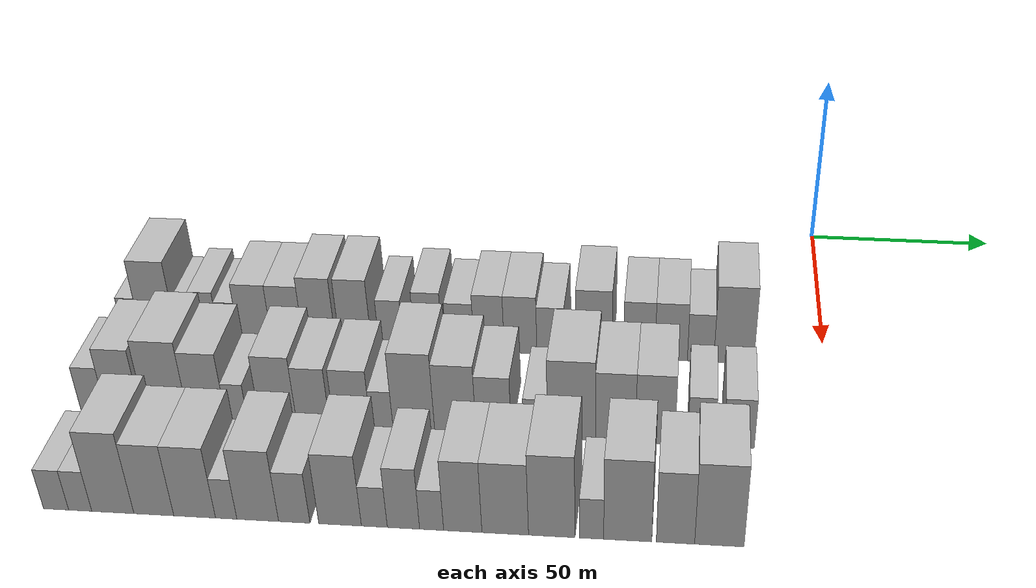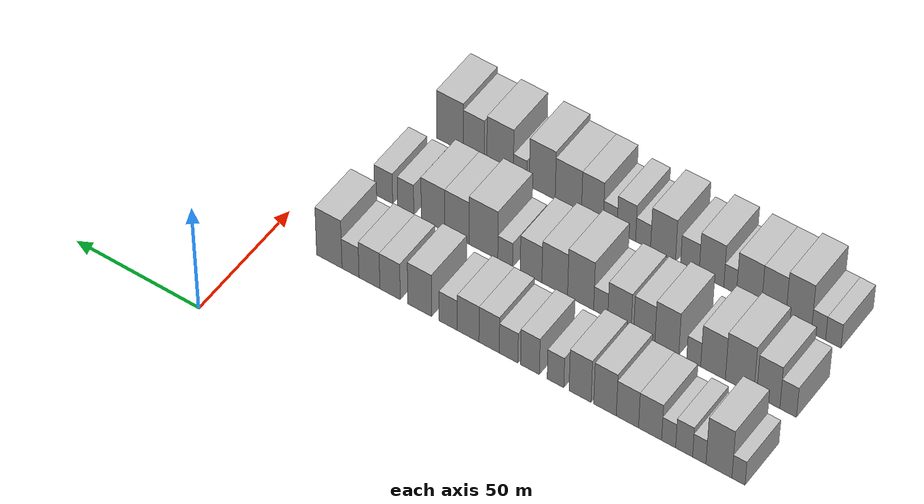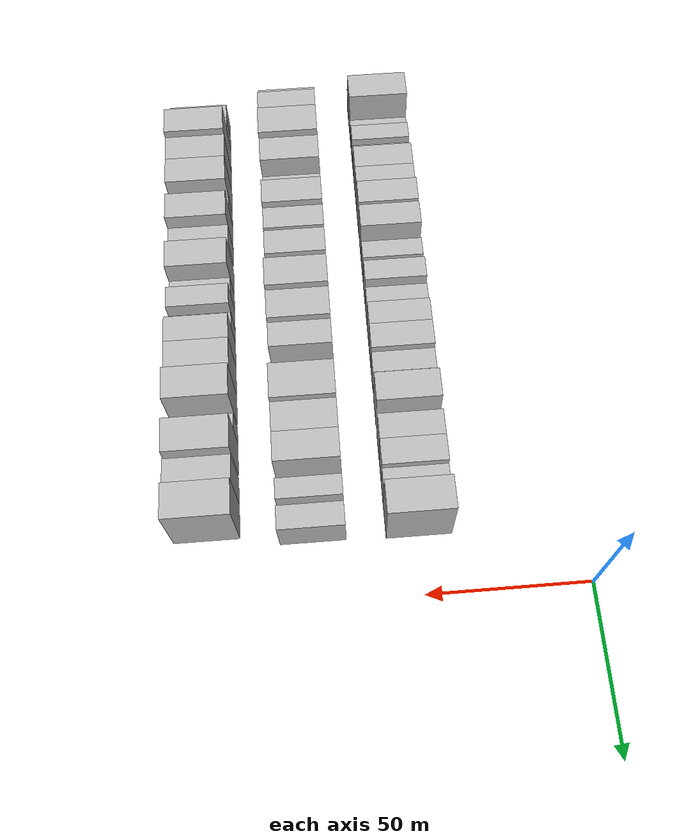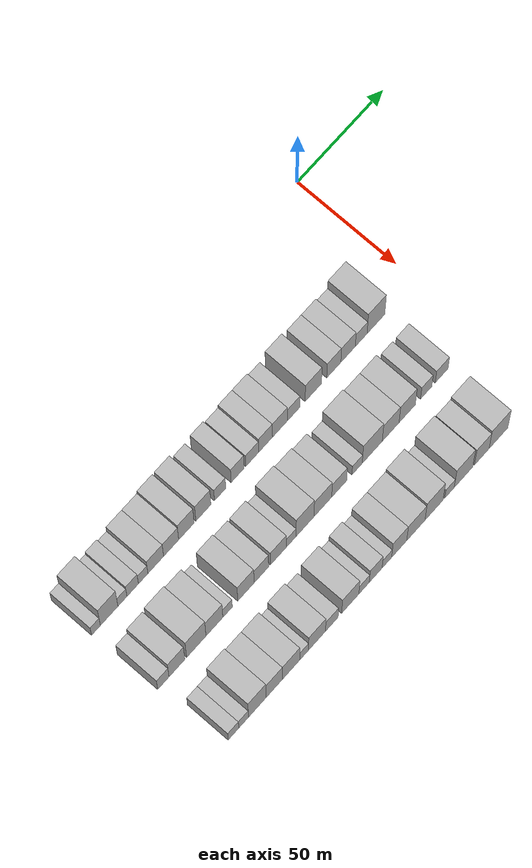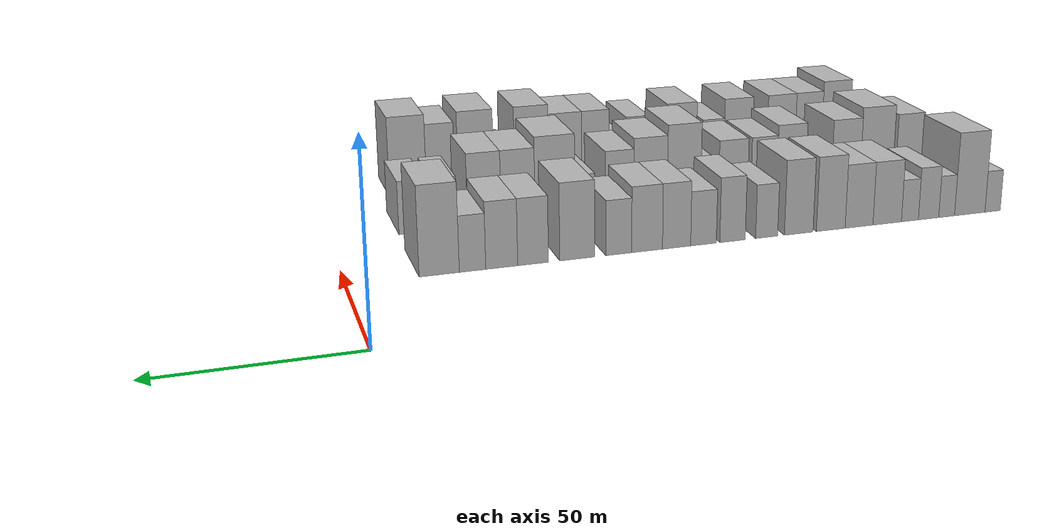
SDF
<sdf version="1.6">
 <world name="default">
  <model name="building_19">
   <static>1</static>
   <pose>50.0000 -181.4019 0 0.000000 0.000000 0.000000</pose>
   <link name="link">
    <pose>0 0 6.00 0 0 0</pose>
    <collision name="collision"><geometry><box><size>20.0000 4.9000 12.0000</size></box></geometry></collision>
    <visual name="visual">
     <cast_shadows>0</cast_shadows>
     <geometry><box><size>20.0000 4.9000 12.0000</size></box></geometry>
     <material>
      <script>
       <uri>model://HANNAS_wall/materials/scripts</uri>
       <uri>model://HANNAS_wall/materials/textures</uri>
       <name>vrc/HANNAS_wall</name>
      </script>
     </material>
    </visual>
   </link>
  </model>
  <model name="building_20">
   <static>1</static>
   <pose>50.0000 -174.1154 0 0.000000 0.000000 0.000000</pose>
   <link name="link">
    <pose>0 0 12.00 0 0 0</pose>
    <collision name="collision"><geometry><box><size>20.0000 9.6731 24.0000</size></box></geometry></collision>
    <visual name="visual">
     <cast_shadows>0</cast_shadows>
     <geometry><box><size>20.0000 9.6731 24.0000</size></box></geometry>
     <material>
      <script>
       <uri>model://HANNAS_wall/materials/scripts</uri>
       <uri>model://HANNAS_wall/materials/textures</uri>
       <name>vrc/HANNAS_wall</name>
      </script>
     </material>
    </visual>
   </link>
  </model>
  <model name="building_21">
   <static>1</static>
   <pose>50.0000 -166.7854 0 0.000000 0.000000 0.000000</pose>
   <link name="link">
    <pose>0 0 6.00 0 0 0</pose>
    <collision name="collision"><geometry><box><size>20.0000 4.9869 12.0000</size></box></geometry></collision>
    <visual name="visual">
     <cast_shadows>0</cast_shadows>
     <geometry><box><size>20.0000 4.9869 12.0000</size></box></geometry>
     <material>
      <script>
       <uri>model://HANNAS_wall/materials/scripts</uri>
       <uri>model://HANNAS_wall/materials/textures</uri>
       <name>vrc/HANNAS_wall</name>
      </script>
     </material>
    </visual>
   </link>
  </model>
  <model name="building_22">
   <static>1</static>
   <pose>50.0000 -161.1091 0 0.000000 0.000000 0.000000</pose>
   <link name="link">
    <pose>0 0 7.50 0 0 0</pose>
    <collision name="collision"><geometry><box><size>20.0000 6.3658 15.0000</size></box></geometry></collision>
    <visual name="visual">
     <cast_shadows>0</cast_shadows>
     <geometry><box><size>20.0000 6.3658 15.0000</size></box></geometry>
     <material>
      <script>
       <uri>model://HANNAS_wall/materials/scripts</uri>
       <uri>model://HANNAS_wall/materials/textures</uri>
       <name>vrc/HANNAS_wall</name>
      </script>
     </material>
    </visual>
   </link>
  </model>
  <model name="building_23">
   <static>1</static>
   <pose>50.0000 -155.2915 0 0.000000 0.000000 0.000000</pose>
   <link name="link">
    <pose>0 0 6.00 0 0 0</pose>
    <collision name="collision"><geometry><box><size>20.0000 5.2694 12.0000</size></box></geometry></collision>
    <visual name="visual">
     <cast_shadows>0</cast_shadows>
     <geometry><box><size>20.0000 5.2694 12.0000</size></box></geometry>
     <material>
      <script>
       <uri>model://HANNAS_wall/materials/scripts</uri>
       <uri>model://HANNAS_wall/materials/textures</uri>
       <name>vrc/HANNAS_wall</name>
      </script>
     </material>
    </visual>
   </link>
  </model>
  <model name="building_24">
   <static>1</static>
   <pose>50.0000 -148.2918 0 0.000000 0.000000 0.000000</pose>
   <link name="link">
    <pose>0 0 9.00 0 0 0</pose>
    <collision name="collision"><geometry><box><size>20.0000 8.7299 18.0000</size></box></geometry></collision>
    <visual name="visual">
     <cast_shadows>0</cast_shadows>
     <geometry><box><size>20.0000 8.7299 18.0000</size></box></geometry>
     <material>
      <script>
       <uri>model://HANNAS_wall/materials/scripts</uri>
       <uri>model://HANNAS_wall/materials/textures</uri>
       <name>vrc/HANNAS_wall</name>
      </script>
     </material>
    </visual>
   </link>
  </model>
  <model name="building_25">
   <static>1</static>
   <pose>50.0000 -139.7136 0 0.000000 0.000000 0.000000</pose>
   <link name="link">
    <pose>0 0 9.00 0 0 0</pose>
    <collision name="collision"><geometry><box><size>20.0000 8.4266 18.0000</size></box></geometry></collision>
    <visual name="visual">
     <cast_shadows>0</cast_shadows>
     <geometry><box><size>20.0000 8.4266 18.0000</size></box></geometry>
     <material>
      <script>
       <uri>model://HANNAS_wall/materials/scripts</uri>
       <uri>model://HANNAS_wall/materials/textures</uri>
       <name>vrc/HANNAS_wall</name>
      </script>
     </material>
    </visual>
   </link>
  </model>
  <model name="building_26">
   <static>1</static>
   <pose>50.0000 -131.1972 0 0.000000 0.000000 0.000000</pose>
   <link name="link">
    <pose>0 0 10.50 0 0 0</pose>
    <collision name="collision"><geometry><box><size>20.0000 8.6061 21.0000</size></box></geometry></collision>
    <visual name="visual">
     <cast_shadows>0</cast_shadows>
     <geometry><box><size>20.0000 8.6061 21.0000</size></box></geometry>
     <material>
      <script>
       <uri>model://HANNAS_wall/materials/scripts</uri>
       <uri>model://HANNAS_wall/materials/textures</uri>
       <name>vrc/HANNAS_wall</name>
      </script>
     </material>
    </visual>
   </link>
  </model>
  <model name="building_27">
   <static>1</static>
   <pose>50.0000 -121.6702 0 0.000000 0.000000 0.000000</pose>
   <link name="link">
    <pose>0 0 10.50 0 0 0</pose>
    <collision name="collision"><geometry><box><size>20.0000 8.4480 21.0000</size></box></geometry></collision>
    <visual name="visual">
     <cast_shadows>0</cast_shadows>
     <geometry><box><size>20.0000 8.4480 21.0000</size></box></geometry>
     <material>
      <script>
       <uri>model://HANNAS_wall/materials/scripts</uri>
       <uri>model://HANNAS_wall/materials/textures</uri>
       <name>vrc/HANNAS_wall</name>
      </script>
     </material>
    </visual>
   </link>
  </model>
  <model name="building_28">
   <static>1</static>
   <pose>50.0000 -112.2499 0 0.000000 0.000000 0.000000</pose>
   <link name="link">
    <pose>0 0 7.50 0 0 0</pose>
    <collision name="collision"><geometry><box><size>20.0000 6.3926 15.0000</size></box></geometry></collision>
    <visual name="visual">
     <cast_shadows>0</cast_shadows>
     <geometry><box><size>20.0000 6.3926 15.0000</size></box></geometry>
     <material>
      <script>
       <uri>model://HANNAS_wall/materials/scripts</uri>
       <uri>model://HANNAS_wall/materials/textures</uri>
       <name>vrc/HANNAS_wall</name>
      </script>
     </material>
    </visual>
   </link>
  </model>
  <model name="building_29">
   <static>1</static>
   <pose>50.0000 -102.4065 0 0.000000 0.000000 0.000000</pose>
   <link name="link">
    <pose>0 0 9.00 0 0 0</pose>
    <collision name="collision"><geometry><box><size>20.0000 7.2943 18.0000</size></box></geometry></collision>
    <visual name="visual">
     <cast_shadows>0</cast_shadows>
     <geometry><box><size>20.0000 7.2943 18.0000</size></box></geometry>
     <material>
      <script>
       <uri>model://HANNAS_wall/materials/scripts</uri>
       <uri>model://HANNAS_wall/materials/textures</uri>
       <name>vrc/HANNAS_wall</name>
      </script>
     </material>
    </visual>
   </link>
  </model>
  <model name="building_30">
   <static>1</static>
   <pose>50.0000 -94.1300 0 0.000000 0.000000 0.000000</pose>
   <link name="link">
    <pose>0 0 7.50 0 0 0</pose>
    <collision name="collision"><geometry><box><size>20.0000 7.2586 15.0000</size></box></geometry></collision>
    <visual name="visual">
     <cast_shadows>0</cast_shadows>
     <geometry><box><size>20.0000 7.2586 15.0000</size></box></geometry>
     <material>
      <script>
       <uri>model://HANNAS_wall/materials/scripts</uri>
       <uri>model://HANNAS_wall/materials/textures</uri>
       <name>vrc/HANNAS_wall</name>
      </script>
     </material>
    </visual>
   </link>
  </model>
  <model name="building_31">
   <static>1</static>
   <pose>50.0000 -86.5583 0 0.000000 0.000000 0.000000</pose>
   <link name="link">
    <pose>0 0 9.00 0 0 0</pose>
    <collision name="collision"><geometry><box><size>20.0000 7.8849 18.0000</size></box></geometry></collision>
    <visual name="visual">
     <cast_shadows>0</cast_shadows>
     <geometry><box><size>20.0000 7.8849 18.0000</size></box></geometry>
     <material>
      <script>
       <uri>model://HANNAS_wall/materials/scripts</uri>
       <uri>model://HANNAS_wall/materials/textures</uri>
       <name>vrc/HANNAS_wall</name>
      </script>
     </material>
    </visual>
   </link>
  </model>
  <model name="building_32">
   <static>1</static>
   <pose>50.0000 -78.3560 0 0.000000 0.000000 0.000000</pose>
   <link name="link">
    <pose>0 0 9.00 0 0 0</pose>
    <collision name="collision"><geometry><box><size>20.0000 8.5198 18.0000</size></box></geometry></collision>
    <visual name="visual">
     <cast_shadows>0</cast_shadows>
     <geometry><box><size>20.0000 8.5198 18.0000</size></box></geometry>
     <material>
      <script>
       <uri>model://HANNAS_wall/materials/scripts</uri>
       <uri>model://HANNAS_wall/materials/textures</uri>
       <name>vrc/HANNAS_wall</name>
      </script>
     </material>
    </visual>
   </link>
  </model>
  <model name="building_33">
   <static>1</static>
   <pose>50.0000 -70.5509 0 0.000000 0.000000 0.000000</pose>
   <link name="link">
    <pose>0 0 7.50 0 0 0</pose>
    <collision name="collision"><geometry><box><size>20.0000 7.0905 15.0000</size></box></geometry></collision>
    <visual name="visual">
     <cast_shadows>0</cast_shadows>
     <geometry><box><size>20.0000 7.0905 15.0000</size></box></geometry>
     <material>
      <script>
       <uri>model://HANNAS_wall/materials/scripts</uri>
       <uri>model://HANNAS_wall/materials/textures</uri>
       <name>vrc/HANNAS_wall</name>
      </script>
     </material>
    </visual>
   </link>
  </model>
  <model name="building_34">
   <static>1</static>
   <pose>50.0000 -59.3128 0 0.000000 0.000000 0.000000</pose>
   <link name="link">
    <pose>0 0 10.50 0 0 0</pose>
    <collision name="collision"><geometry><box><size>20.0000 9.3856 21.0000</size></box></geometry></collision>
    <visual name="visual">
     <cast_shadows>0</cast_shadows>
     <geometry><box><size>20.0000 9.3856 21.0000</size></box></geometry>
     <material>
      <script>
       <uri>model://HANNAS_wall/materials/scripts</uri>
       <uri>model://HANNAS_wall/materials/textures</uri>
       <name>vrc/HANNAS_wall</name>
      </script>
     </material>
    </visual>
   </link>
  </model>
  <model name="building_35">
   <static>1</static>
   <pose>50.0000 -47.5667 0 0.000000 0.000000 0.000000</pose>
   <link name="link">
    <pose>0 0 9.00 0 0 0</pose>
    <collision name="collision"><geometry><box><size>20.0000 8.1066 18.0000</size></box></geometry></collision>
    <visual name="visual">
     <cast_shadows>0</cast_shadows>
     <geometry><box><size>20.0000 8.1066 18.0000</size></box></geometry>
     <material>
      <script>
       <uri>model://HANNAS_wall/materials/scripts</uri>
       <uri>model://HANNAS_wall/materials/textures</uri>
       <name>vrc/HANNAS_wall</name>
      </script>
     </material>
    </visual>
   </link>
  </model>
  <model name="building_36">
   <static>1</static>
   <pose>50.0000 -39.3551 0 0.000000 0.000000 0.000000</pose>
   <link name="link">
    <pose>0 0 9.00 0 0 0</pose>
    <collision name="collision"><geometry><box><size>20.0000 8.3166 18.0000</size></box></geometry></collision>
    <visual name="visual">
     <cast_shadows>0</cast_shadows>
     <geometry><box><size>20.0000 8.3166 18.0000</size></box></geometry>
     <material>
      <script>
       <uri>model://HANNAS_wall/materials/scripts</uri>
       <uri>model://HANNAS_wall/materials/textures</uri>
       <name>vrc/HANNAS_wall</name>
      </script>
     </material>
    </visual>
   </link>
  </model>
  <model name="building_37">
   <static>1</static>
   <pose>50.0000 -31.7991 0 0.000000 0.000000 0.000000</pose>
   <link name="link">
    <pose>0 0 7.50 0 0 0</pose>
    <collision name="collision"><geometry><box><size>20.0000 6.7954 15.0000</size></box></geometry></collision>
    <visual name="visual">
     <cast_shadows>0</cast_shadows>
     <geometry><box><size>20.0000 6.7954 15.0000</size></box></geometry>
     <material>
      <script>
       <uri>model://HANNAS_wall/materials/scripts</uri>
       <uri>model://HANNAS_wall/materials/textures</uri>
       <name>vrc/HANNAS_wall</name>
      </script>
     </material>
    </visual>
   </link>
  </model>
  <model name="building_38">
   <static>1</static>
   <pose>50.0000 -23.2896 0 0.000000 0.000000 0.000000</pose>
   <link name="link">
    <pose>0 0 12.00 0 0 0</pose>
    <collision name="collision"><geometry><box><size>20.0000 10.2236 24.0000</size></box></geometry></collision>
    <visual name="visual">
     <cast_shadows>0</cast_shadows>
     <geometry><box><size>20.0000 10.2236 24.0000</size></box></geometry>
     <material>
      <script>
       <uri>model://HANNAS_wall/materials/scripts</uri>
       <uri>model://HANNAS_wall/materials/textures</uri>
       <name>vrc/HANNAS_wall</name>
      </script>
     </material>
    </visual>
   </link>
  </model>
  <model name="building_102">
   <static>1</static>
   <pose>82.0000 -179.8243 0 0.000000 0.000000 0.000000</pose>
   <link name="link">
    <pose>0 0 7.50 0 0 0</pose>
    <collision name="collision"><geometry><box><size>20.0000 6.2263 15.0000</size></box></geometry></collision>
    <visual name="visual">
     <cast_shadows>0</cast_shadows>
     <geometry><box><size>20.0000 6.2263 15.0000</size></box></geometry>
     <material>
      <script>
       <uri>model://HANNAS_wall/materials/scripts</uri>
       <uri>model://HANNAS_wall/materials/textures</uri>
       <name>vrc/HANNAS_wall</name>
      </script>
     </material>
    </visual>
   </link>
  </model>
  <model name="building_103">
   <static>1</static>
   <pose>82.0000 -172.3309 0 0.000000 0.000000 0.000000</pose>
   <link name="link">
    <pose>0 0 10.50 0 0 0</pose>
    <collision name="collision"><geometry><box><size>20.0000 8.7605 21.0000</size></box></geometry></collision>
    <visual name="visual">
     <cast_shadows>0</cast_shadows>
     <geometry><box><size>20.0000 8.7605 21.0000</size></box></geometry>
     <material>
      <script>
       <uri>model://HANNAS_wall/materials/scripts</uri>
       <uri>model://HANNAS_wall/materials/textures</uri>
       <name>vrc/HANNAS_wall</name>
      </script>
     </material>
    </visual>
   </link>
  </model>
  <model name="building_104">
   <static>1</static>
   <pose>82.0000 -161.5767 0 0.000000 0.000000 0.000000</pose>
   <link name="link">
    <pose>0 0 12.00 0 0 0</pose>
    <collision name="collision"><geometry><box><size>20.0000 10.7479 24.0000</size></box></geometry></collision>
    <visual name="visual">
     <cast_shadows>0</cast_shadows>
     <geometry><box><size>20.0000 10.7479 24.0000</size></box></geometry>
     <material>
      <script>
       <uri>model://HANNAS_wall/materials/scripts</uri>
       <uri>model://HANNAS_wall/materials/textures</uri>
       <name>vrc/HANNAS_wall</name>
      </script>
     </material>
    </visual>
   </link>
  </model>
  <model name="building_105">
   <static>1</static>
   <pose>82.0000 -151.5156 0 0.000000 0.000000 0.000000</pose>
   <link name="link">
    <pose>0 0 10.50 0 0 0</pose>
    <collision name="collision"><geometry><box><size>20.0000 9.3743 21.0000</size></box></geometry></collision>
    <visual name="visual">
     <cast_shadows>0</cast_shadows>
     <geometry><box><size>20.0000 9.3743 21.0000</size></box></geometry>
     <material>
      <script>
       <uri>model://HANNAS_wall/materials/scripts</uri>
       <uri>model://HANNAS_wall/materials/textures</uri>
       <name>vrc/HANNAS_wall</name>
      </script>
     </material>
    </visual>
   </link>
  </model>
  <model name="building_106">
   <static>1</static>
   <pose>82.0000 -144.1608 0 0.000000 0.000000 0.000000</pose>
   <link name="link">
    <pose>0 0 6.00 0 0 0</pose>
    <collision name="collision"><geometry><box><size>20.0000 5.3353 12.0000</size></box></geometry></collision>
    <visual name="visual">
     <cast_shadows>0</cast_shadows>
     <geometry><box><size>20.0000 5.3353 12.0000</size></box></geometry>
     <material>
      <script>
       <uri>model://HANNAS_wall/materials/scripts</uri>
       <uri>model://HANNAS_wall/materials/textures</uri>
       <name>vrc/HANNAS_wall</name>
      </script>
     </material>
    </visual>
   </link>
  </model>
  <model name="building_107">
   <static>1</static>
   <pose>82.0000 -133.9199 0 0.000000 0.000000 0.000000</pose>
   <link name="link">
    <pose>0 0 10.50 0 0 0</pose>
    <collision name="collision"><geometry><box><size>20.0000 9.1466 21.0000</size></box></geometry></collision>
    <visual name="visual">
     <cast_shadows>0</cast_shadows>
     <geometry><box><size>20.0000 9.1466 21.0000</size></box></geometry>
     <material>
      <script>
       <uri>model://HANNAS_wall/materials/scripts</uri>
       <uri>model://HANNAS_wall/materials/textures</uri>
       <name>vrc/HANNAS_wall</name>
      </script>
     </material>
    </visual>
   </link>
  </model>
  <model name="building_108">
   <static>1</static>
   <pose>82.0000 -125.2699 0 0.000000 0.000000 0.000000</pose>
   <link name="link">
    <pose>0 0 9.00 0 0 0</pose>
    <collision name="collision"><geometry><box><size>20.0000 8.1534 18.0000</size></box></geometry></collision>
    <visual name="visual">
     <cast_shadows>0</cast_shadows>
     <geometry><box><size>20.0000 8.1534 18.0000</size></box></geometry>
     <material>
      <script>
       <uri>model://HANNAS_wall/materials/scripts</uri>
       <uri>model://HANNAS_wall/materials/textures</uri>
       <name>vrc/HANNAS_wall</name>
      </script>
     </material>
    </visual>
   </link>
  </model>
  <model name="building_109">
   <static>1</static>
   <pose>82.0000 -115.6940 0 0.000000 0.000000 0.000000</pose>
   <link name="link">
    <pose>0 0 9.00 0 0 0</pose>
    <collision name="collision"><geometry><box><size>20.0000 8.9985 18.0000</size></box></geometry></collision>
    <visual name="visual">
     <cast_shadows>0</cast_shadows>
     <geometry><box><size>20.0000 8.9985 18.0000</size></box></geometry>
     <material>
      <script>
       <uri>model://HANNAS_wall/materials/scripts</uri>
       <uri>model://HANNAS_wall/materials/textures</uri>
       <name>vrc/HANNAS_wall</name>
      </script>
     </material>
    </visual>
   </link>
  </model>
  <model name="building_110">
   <static>1</static>
   <pose>82.0000 -108.4485 0 0.000000 0.000000 0.000000</pose>
   <link name="link">
    <pose>0 0 6.00 0 0 0</pose>
    <collision name="collision"><geometry><box><size>20.0000 5.4926 12.0000</size></box></geometry></collision>
    <visual name="visual">
     <cast_shadows>0</cast_shadows>
     <geometry><box><size>20.0000 5.4926 12.0000</size></box></geometry>
     <material>
      <script>
       <uri>model://HANNAS_wall/materials/scripts</uri>
       <uri>model://HANNAS_wall/materials/textures</uri>
       <name>vrc/HANNAS_wall</name>
      </script>
     </material>
    </visual>
   </link>
  </model>
  <model name="building_111">
   <static>1</static>
   <pose>82.0000 -100.6240 0 0.000000 0.000000 0.000000</pose>
   <link name="link">
    <pose>0 0 12.00 0 0 0</pose>
    <collision name="collision"><geometry><box><size>20.0000 10.1564 24.0000</size></box></geometry></collision>
    <visual name="visual">
     <cast_shadows>0</cast_shadows>
     <geometry><box><size>20.0000 10.1564 24.0000</size></box></geometry>
     <material>
      <script>
       <uri>model://HANNAS_wall/materials/scripts</uri>
       <uri>model://HANNAS_wall/materials/textures</uri>
       <name>vrc/HANNAS_wall</name>
      </script>
     </material>
    </visual>
   </link>
  </model>
  <model name="building_112">
   <static>1</static>
   <pose>82.0000 -90.5231 0 0.000000 0.000000 0.000000</pose>
   <link name="link">
    <pose>0 0 10.50 0 0 0</pose>
    <collision name="collision"><geometry><box><size>20.0000 10.0453 21.0000</size></box></geometry></collision>
    <visual name="visual">
     <cast_shadows>0</cast_shadows>
     <geometry><box><size>20.0000 10.0453 21.0000</size></box></geometry>
     <material>
      <script>
       <uri>model://HANNAS_wall/materials/scripts</uri>
       <uri>model://HANNAS_wall/materials/textures</uri>
       <name>vrc/HANNAS_wall</name>
      </script>
     </material>
    </visual>
   </link>
  </model>
  <model name="building_113">
   <static>1</static>
   <pose>82.0000 -81.2311 0 0.000000 0.000000 0.000000</pose>
   <link name="link">
    <pose>0 0 9.00 0 0 0</pose>
    <collision name="collision"><geometry><box><size>20.0000 8.5388 18.0000</size></box></geometry></collision>
    <visual name="visual">
     <cast_shadows>0</cast_shadows>
     <geometry><box><size>20.0000 8.5388 18.0000</size></box></geometry>
     <material>
      <script>
       <uri>model://HANNAS_wall/materials/scripts</uri>
       <uri>model://HANNAS_wall/materials/textures</uri>
       <name>vrc/HANNAS_wall</name>
      </script>
     </material>
    </visual>
   </link>
  </model>
  <model name="building_114">
   <static>1</static>
   <pose>82.0000 -71.0365 0 0.000000 0.000000 0.000000</pose>
   <link name="link">
    <pose>0 0 6.00 0 0 0</pose>
    <collision name="collision"><geometry><box><size>20.0000 5.8503 12.0000</size></box></geometry></collision>
    <visual name="visual">
     <cast_shadows>0</cast_shadows>
     <geometry><box><size>20.0000 5.8503 12.0000</size></box></geometry>
     <material>
      <script>
       <uri>model://HANNAS_wall/materials/scripts</uri>
       <uri>model://HANNAS_wall/materials/textures</uri>
       <name>vrc/HANNAS_wall</name>
      </script>
     </material>
    </visual>
   </link>
  </model>
  <model name="building_115">
   <static>1</static>
   <pose>82.0000 -62.3715 0 0.000000 0.000000 0.000000</pose>
   <link name="link">
    <pose>0 0 12.00 0 0 0</pose>
    <collision name="collision"><geometry><box><size>20.0000 11.4798 24.0000</size></box></geometry></collision>
    <visual name="visual">
     <cast_shadows>0</cast_shadows>
     <geometry><box><size>20.0000 11.4798 24.0000</size></box></geometry>
     <material>
      <script>
       <uri>model://HANNAS_wall/materials/scripts</uri>
       <uri>model://HANNAS_wall/materials/textures</uri>
       <name>vrc/HANNAS_wall</name>
      </script>
     </material>
    </visual>
   </link>
  </model>
  <model name="building_116">
   <static>1</static>
   <pose>82.0000 -51.8162 0 0.000000 0.000000 0.000000</pose>
   <link name="link">
    <pose>0 0 10.50 0 0 0</pose>
    <collision name="collision"><geometry><box><size>20.0000 9.6308 21.0000</size></box></geometry></collision>
    <visual name="visual">
     <cast_shadows>0</cast_shadows>
     <geometry><box><size>20.0000 9.6308 21.0000</size></box></geometry>
     <material>
      <script>
       <uri>model://HANNAS_wall/materials/scripts</uri>
       <uri>model://HANNAS_wall/materials/textures</uri>
       <name>vrc/HANNAS_wall</name>
      </script>
     </material>
    </visual>
   </link>
  </model>
  <model name="building_117">
   <static>1</static>
   <pose>82.0000 -42.3027 0 0.000000 0.000000 0.000000</pose>
   <link name="link">
    <pose>0 0 10.50 0 0 0</pose>
    <collision name="collision"><geometry><box><size>20.0000 9.3961 21.0000</size></box></geometry></collision>
    <visual name="visual">
     <cast_shadows>0</cast_shadows>
     <geometry><box><size>20.0000 9.3961 21.0000</size></box></geometry>
     <material>
      <script>
       <uri>model://HANNAS_wall/materials/scripts</uri>
       <uri>model://HANNAS_wall/materials/textures</uri>
       <name>vrc/HANNAS_wall</name>
      </script>
     </material>
    </visual>
   </link>
  </model>
  <model name="building_118">
   <static>1</static>
   <pose>82.0000 -31.3505 0 0.000000 0.000000 0.000000</pose>
   <link name="link">
    <pose>0 0 7.50 0 0 0</pose>
    <collision name="collision"><geometry><box><size>20.0000 6.5084 15.0000</size></box></geometry></collision>
    <visual name="visual">
     <cast_shadows>0</cast_shadows>
     <geometry><box><size>20.0000 6.5084 15.0000</size></box></geometry>
     <material>
      <script>
       <uri>model://HANNAS_wall/materials/scripts</uri>
       <uri>model://HANNAS_wall/materials/textures</uri>
       <name>vrc/HANNAS_wall</name>
      </script>
     </material>
    </visual>
   </link>
  </model>
  <model name="building_119">
   <static>1</static>
   <pose>82.0000 -22.4010 0 0.000000 0.000000 0.000000</pose>
   <link name="link">
    <pose>0 0 7.50 0 0 0</pose>
    <collision name="collision"><geometry><box><size>20.0000 7.3905 15.0000</size></box></geometry></collision>
    <visual name="visual">
     <cast_shadows>0</cast_shadows>
     <geometry><box><size>20.0000 7.3905 15.0000</size></box></geometry>
     <material>
      <script>
       <uri>model://HANNAS_wall/materials/scripts</uri>
       <uri>model://HANNAS_wall/materials/textures</uri>
       <name>vrc/HANNAS_wall</name>
      </script>
     </material>
    </visual>
   </link>
  </model>
  <model name="building_177">
   <static>1</static>
   <pose>114.0000 -177.0372 0 0.000000 0.000000 0.000000</pose>
   <link name="link">
    <pose>0 0 6.00 0 0 0</pose>
    <collision name="collision"><geometry><box><size>20.0000 5.8361 12.0000</size></box></geometry></collision>
    <visual name="visual">
     <cast_shadows>0</cast_shadows>
     <geometry><box><size>20.0000 5.8361 12.0000</size></box></geometry>
     <material>
      <script>
       <uri>model://HANNAS_wall/materials/scripts</uri>
       <uri>model://HANNAS_wall/materials/textures</uri>
       <name>vrc/HANNAS_wall</name>
      </script>
     </material>
    </visual>
   </link>
  </model>
  <model name="building_178">
   <static>1</static>
   <pose>114.0000 -171.4292 0 0.000000 0.000000 0.000000</pose>
   <link name="link">
    <pose>0 0 6.00 0 0 0</pose>
    <collision name="collision"><geometry><box><size>20.0000 5.3800 12.0000</size></box></geometry></collision>
    <visual name="visual">
     <cast_shadows>0</cast_shadows>
     <geometry><box><size>20.0000 5.3800 12.0000</size></box></geometry>
     <material>
      <script>
       <uri>model://HANNAS_wall/materials/scripts</uri>
       <uri>model://HANNAS_wall/materials/textures</uri>
       <name>vrc/HANNAS_wall</name>
      </script>
     </material>
    </visual>
   </link>
  </model>
  <model name="building_179">
   <static>1</static>
   <pose>114.0000 -163.8633 0 0.000000 0.000000 0.000000</pose>
   <link name="link">
    <pose>0 0 12.00 0 0 0</pose>
    <collision name="collision"><geometry><box><size>20.0000 9.7517 24.0000</size></box></geometry></collision>
    <visual name="visual">
     <cast_shadows>0</cast_shadows>
     <geometry><box><size>20.0000 9.7517 24.0000</size></box></geometry>
     <material>
      <script>
       <uri>model://HANNAS_wall/materials/scripts</uri>
       <uri>model://HANNAS_wall/materials/textures</uri>
       <name>vrc/HANNAS_wall</name>
      </script>
     </material>
    </visual>
   </link>
  </model>
  <model name="building_180">
   <static>1</static>
   <pose>114.0000 -154.3883 0 0.000000 0.000000 0.000000</pose>
   <link name="link">
    <pose>0 0 10.50 0 0 0</pose>
    <collision name="collision"><geometry><box><size>20.0000 9.1984 21.0000</size></box></geometry></collision>
    <visual name="visual">
     <cast_shadows>0</cast_shadows>
     <geometry><box><size>20.0000 9.1984 21.0000</size></box></geometry>
     <material>
      <script>
       <uri>model://HANNAS_wall/materials/scripts</uri>
       <uri>model://HANNAS_wall/materials/textures</uri>
       <name>vrc/HANNAS_wall</name>
      </script>
     </material>
    </visual>
   </link>
  </model>
  <model name="building_181">
   <static>1</static>
   <pose>114.0000 -144.9883 0 0.000000 0.000000 0.000000</pose>
   <link name="link">
    <pose>0 0 10.50 0 0 0</pose>
    <collision name="collision"><geometry><box><size>20.0000 9.6016 21.0000</size></box></geometry></collision>
    <visual name="visual">
     <cast_shadows>0</cast_shadows>
     <geometry><box><size>20.0000 9.6016 21.0000</size></box></geometry>
     <material>
      <script>
       <uri>model://HANNAS_wall/materials/scripts</uri>
       <uri>model://HANNAS_wall/materials/textures</uri>
       <name>vrc/HANNAS_wall</name>
      </script>
     </material>
    </visual>
   </link>
  </model>
  <model name="building_182">
   <static>1</static>
   <pose>114.0000 -137.7376 0 0.000000 0.000000 0.000000</pose>
   <link name="link">
    <pose>0 0 6.00 0 0 0</pose>
    <collision name="collision"><geometry><box><size>20.0000 4.8999 12.0000</size></box></geometry></collision>
    <visual name="visual">
     <cast_shadows>0</cast_shadows>
     <geometry><box><size>20.0000 4.8999 12.0000</size></box></geometry>
     <material>
      <script>
       <uri>model://HANNAS_wall/materials/scripts</uri>
       <uri>model://HANNAS_wall/materials/textures</uri>
       <name>vrc/HANNAS_wall</name>
      </script>
     </material>
    </visual>
   </link>
  </model>
  <model name="building_183">
   <static>1</static>
   <pose>114.0000 -130.5097 0 0.000000 0.000000 0.000000</pose>
   <link name="link">
    <pose>0 0 10.50 0 0 0</pose>
    <collision name="collision"><geometry><box><size>20.0000 9.5559 21.0000</size></box></geometry></collision>
    <visual name="visual">
     <cast_shadows>0</cast_shadows>
     <geometry><box><size>20.0000 9.5559 21.0000</size></box></geometry>
     <material>
      <script>
       <uri>model://HANNAS_wall/materials/scripts</uri>
       <uri>model://HANNAS_wall/materials/textures</uri>
       <name>vrc/HANNAS_wall</name>
      </script>
     </material>
    </visual>
   </link>
  </model>
  <model name="building_184">
   <static>1</static>
   <pose>114.0000 -122.1560 0 0.000000 0.000000 0.000000</pose>
   <link name="link">
    <pose>0 0 7.50 0 0 0</pose>
    <collision name="collision"><geometry><box><size>20.0000 7.1515 15.0000</size></box></geometry></collision>
    <visual name="visual">
     <cast_shadows>0</cast_shadows>
     <geometry><box><size>20.0000 7.1515 15.0000</size></box></geometry>
     <material>
      <script>
       <uri>model://HANNAS_wall/materials/scripts</uri>
       <uri>model://HANNAS_wall/materials/textures</uri>
       <name>vrc/HANNAS_wall</name>
      </script>
     </material>
    </visual>
   </link>
  </model>
  <model name="building_185">
   <static>1</static>
   <pose>114.0000 -111.7351 0 0.000000 0.000000 0.000000</pose>
   <link name="link">
    <pose>0 0 10.50 0 0 0</pose>
    <collision name="collision"><geometry><box><size>20.0000 9.6902 21.0000</size></box></geometry></collision>
    <visual name="visual">
     <cast_shadows>0</cast_shadows>
     <geometry><box><size>20.0000 9.6902 21.0000</size></box></geometry>
     <material>
      <script>
       <uri>model://HANNAS_wall/materials/scripts</uri>
       <uri>model://HANNAS_wall/materials/textures</uri>
       <name>vrc/HANNAS_wall</name>
      </script>
     </material>
    </visual>
   </link>
  </model>
  <model name="building_186">
   <static>1</static>
   <pose>114.0000 -103.9580 0 0.000000 0.000000 0.000000</pose>
   <link name="link">
    <pose>0 0 6.00 0 0 0</pose>
    <collision name="collision"><geometry><box><size>20.0000 5.8641 12.0000</size></box></geometry></collision>
    <visual name="visual">
     <cast_shadows>0</cast_shadows>
     <geometry><box><size>20.0000 5.8641 12.0000</size></box></geometry>
     <material>
      <script>
       <uri>model://HANNAS_wall/materials/scripts</uri>
       <uri>model://HANNAS_wall/materials/textures</uri>
       <name>vrc/HANNAS_wall</name>
      </script>
     </material>
    </visual>
   </link>
  </model>
  <model name="building_187">
   <static>1</static>
   <pose>114.0000 -97.3766 0 0.000000 0.000000 0.000000</pose>
   <link name="link">
    <pose>0 0 9.00 0 0 0</pose>
    <collision name="collision"><geometry><box><size>20.0000 7.2988 18.0000</size></box></geometry></collision>
    <visual name="visual">
     <cast_shadows>0</cast_shadows>
     <geometry><box><size>20.0000 7.2988 18.0000</size></box></geometry>
     <material>
      <script>
       <uri>model://HANNAS_wall/materials/scripts</uri>
       <uri>model://HANNAS_wall/materials/textures</uri>
       <name>vrc/HANNAS_wall</name>
      </script>
     </material>
    </visual>
   </link>
  </model>
  <model name="building_188">
   <static>1</static>
   <pose>114.0000 -91.0255 0 0.000000 0.000000 0.000000</pose>
   <link name="link">
    <pose>0 0 6.00 0 0 0</pose>
    <collision name="collision"><geometry><box><size>20.0000 5.4034 12.0000</size></box></geometry></collision>
    <visual name="visual">
     <cast_shadows>0</cast_shadows>
     <geometry><box><size>20.0000 5.4034 12.0000</size></box></geometry>
     <material>
      <script>
       <uri>model://HANNAS_wall/materials/scripts</uri>
       <uri>model://HANNAS_wall/materials/textures</uri>
       <name>vrc/HANNAS_wall</name>
      </script>
     </material>
    </visual>
   </link>
  </model>
  <model name="building_189">
   <static>1</static>
   <pose>114.0000 -84.0196 0 0.000000 0.000000 0.000000</pose>
   <link name="link">
    <pose>0 0 10.50 0 0 0</pose>
    <collision name="collision"><geometry><box><size>20.0000 8.6083 21.0000</size></box></geometry></collision>
    <visual name="visual">
     <cast_shadows>0</cast_shadows>
     <geometry><box><size>20.0000 8.6083 21.0000</size></box></geometry>
     <material>
      <script>
       <uri>model://HANNAS_wall/materials/scripts</uri>
       <uri>model://HANNAS_wall/materials/textures</uri>
       <name>vrc/HANNAS_wall</name>
      </script>
     </material>
    </visual>
   </link>
  </model>
  <model name="building_190">
   <static>1</static>
   <pose>114.0000 -74.4985 0 0.000000 0.000000 0.000000</pose>
   <link name="link">
    <pose>0 0 10.50 0 0 0</pose>
    <collision name="collision"><geometry><box><size>20.0000 10.4339 21.0000</size></box></geometry></collision>
    <visual name="visual">
     <cast_shadows>0</cast_shadows>
     <geometry><box><size>20.0000 10.4339 21.0000</size></box></geometry>
     <material>
      <script>
       <uri>model://HANNAS_wall/materials/scripts</uri>
       <uri>model://HANNAS_wall/materials/textures</uri>
       <name>vrc/HANNAS_wall</name>
      </script>
     </material>
    </visual>
   </link>
  </model>
  <model name="building_191">
   <static>1</static>
   <pose>114.0000 -64.1017 0 0.000000 0.000000 0.000000</pose>
   <link name="link">
    <pose>0 0 12.00 0 0 0</pose>
    <collision name="collision"><geometry><box><size>20.0000 10.3595 24.0000</size></box></geometry></collision>
    <visual name="visual">
     <cast_shadows>0</cast_shadows>
     <geometry><box><size>20.0000 10.3595 24.0000</size></box></geometry>
     <material>
      <script>
       <uri>model://HANNAS_wall/materials/scripts</uri>
       <uri>model://HANNAS_wall/materials/textures</uri>
       <name>vrc/HANNAS_wall</name>
      </script>
     </material>
    </visual>
   </link>
  </model>
  <model name="building_192">
   <static>1</static>
   <pose>114.0000 -55.2342 0 0.000000 0.000000 0.000000</pose>
   <link name="link">
    <pose>0 0 6.00 0 0 0</pose>
    <collision name="collision"><geometry><box><size>20.0000 5.3755 12.0000</size></box></geometry></collision>
    <visual name="visual">
     <cast_shadows>0</cast_shadows>
     <geometry><box><size>20.0000 5.3755 12.0000</size></box></geometry>
     <material>
      <script>
       <uri>model://HANNAS_wall/materials/scripts</uri>
       <uri>model://HANNAS_wall/materials/textures</uri>
       <name>vrc/HANNAS_wall</name>
      </script>
     </material>
    </visual>
   </link>
  </model>
  <model name="building_193">
   <static>1</static>
   <pose>114.0000 -47.2175 0 0.000000 0.000000 0.000000</pose>
   <link name="link">
    <pose>0 0 12.00 0 0 0</pose>
    <collision name="collision"><geometry><box><size>20.0000 10.6580 24.0000</size></box></geometry></collision>
    <visual name="visual">
     <cast_shadows>0</cast_shadows>
     <geometry><box><size>20.0000 10.6580 24.0000</size></box></geometry>
     <material>
      <script>
       <uri>model://HANNAS_wall/materials/scripts</uri>
       <uri>model://HANNAS_wall/materials/textures</uri>
       <name>vrc/HANNAS_wall</name>
      </script>
     </material>
    </visual>
   </link>
  </model>
  <model name="building_194">
   <static>1</static>
   <pose>114.0000 -36.6595 0 0.000000 0.000000 0.000000</pose>
   <link name="link">
    <pose>0 0 10.50 0 0 0</pose>
    <collision name="collision"><geometry><box><size>20.0000 8.4579 21.0000</size></box></geometry></collision>
    <visual name="visual">
     <cast_shadows>0</cast_shadows>
     <geometry><box><size>20.0000 8.4579 21.0000</size></box></geometry>
     <material>
      <script>
       <uri>model://HANNAS_wall/materials/scripts</uri>
       <uri>model://HANNAS_wall/materials/textures</uri>
       <name>vrc/HANNAS_wall</name>
      </script>
     </material>
    </visual>
   </link>
  </model>
  <model name="building_195">
   <static>1</static>
   <pose>114.0000 -26.9975 0 0.000000 0.000000 0.000000</pose>
   <link name="link">
    <pose>0 0 12.00 0 0 0</pose>
    <collision name="collision"><geometry><box><size>20.0000 10.8662 24.0000</size></box></geometry></collision>
    <visual name="visual">
     <cast_shadows>0</cast_shadows>
     <geometry><box><size>20.0000 10.8662 24.0000</size></box></geometry>
     <material>
      <script>
       <uri>model://HANNAS_wall/materials/scripts</uri>
       <uri>model://HANNAS_wall/materials/textures</uri>
       <name>vrc/HANNAS_wall</name>
      </script>
     </material>
    </visual>
   </link>
  </model>
 </world>
</sdf>
